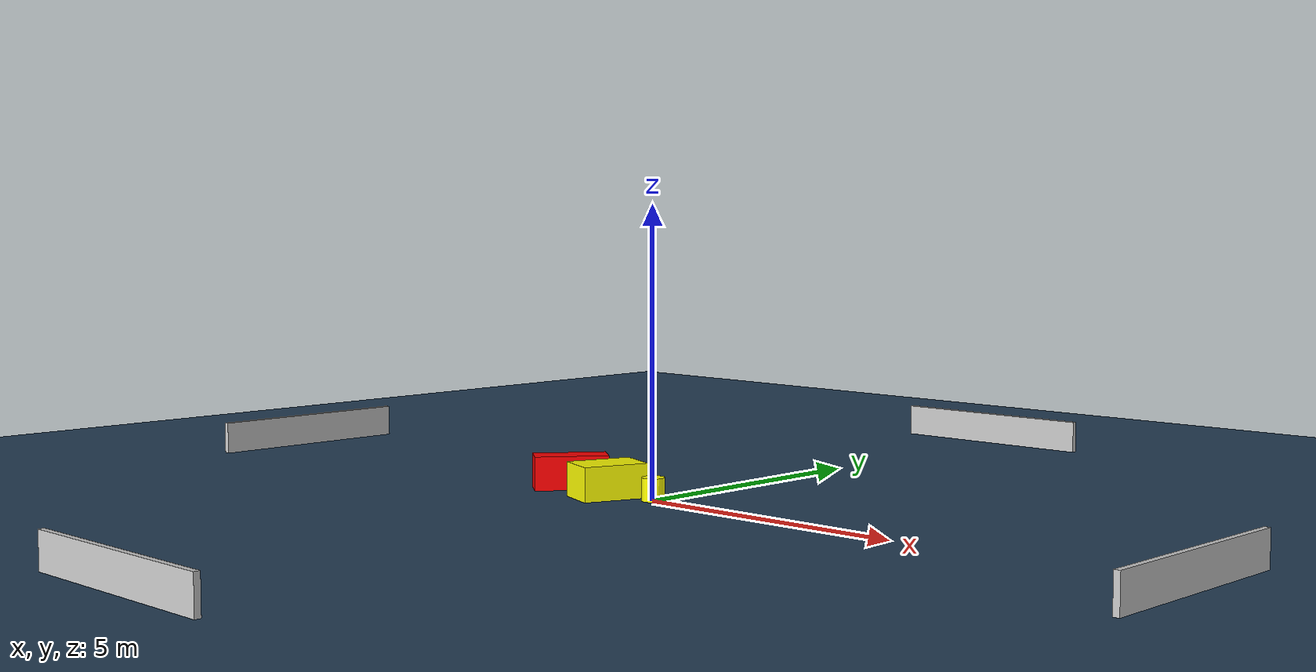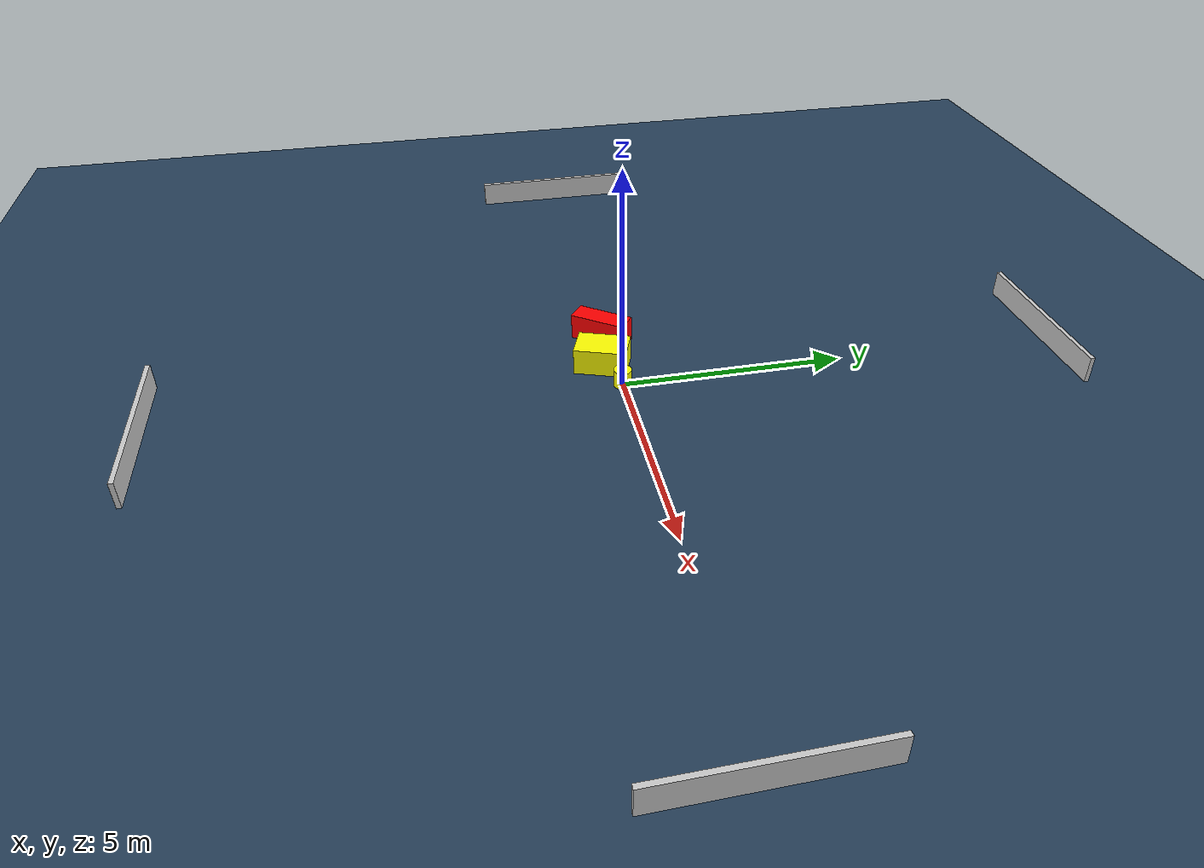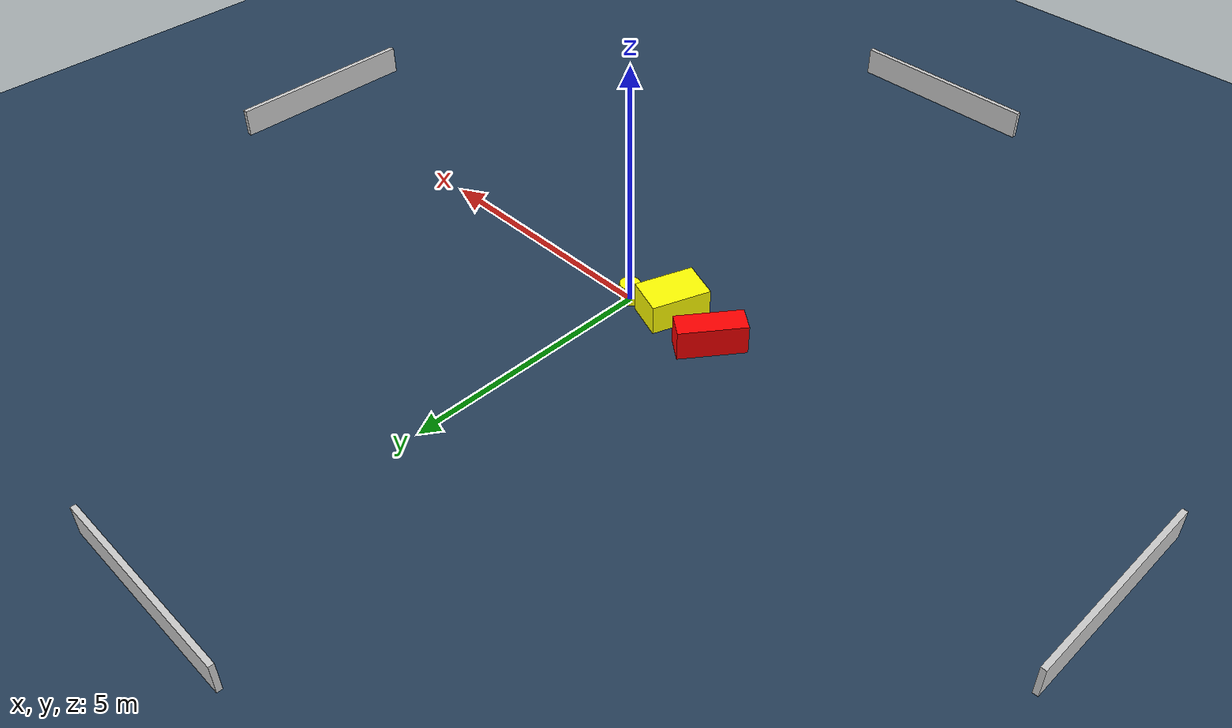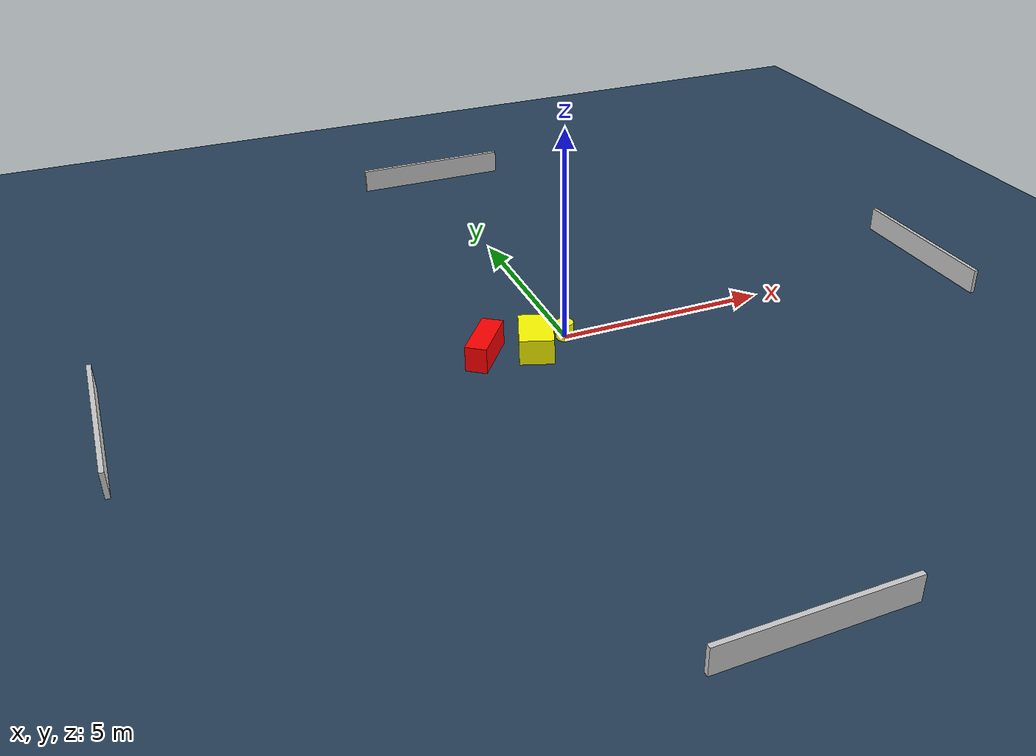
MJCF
<?xml version="1.0" ?>
<mujoco model="generated_environment">
  <option timestep="0.01" integrator="RK4" cone="elliptic"/>
  <default>
    <geom density="1"/>
  </default>
  <asset>
    <texture builtin="gradient" height="3072" name="skybox" rgb1="0.3 0.5 0.7" rgb2="0 0 0" type="skybox" width="512"/>
    <texture builtin="checker" height="300" name="groundplane" rgb1="0.2 0.3 0.4" rgb2="0.1 0.2 0.3" type="2d" width="300"/>
    <material name="groundplane" reflectance="0.2" texrepeat="5 5" texture="groundplane"/>
  </asset>
  <worldbody>
    <light dir="0 0 -1" directional="true" pos="0 0 1.5"/>
    <geom condim="3" friction="0.5 0.005 0.001" material="groundplane" name="floor" pos="0 0 0" size="0 0 0.05" type="plane"/>
    <body name="walls">
      <geom name="wall_1" condim="4" pos="-10.0 0.0 0.3" rgba="0.800000011920929 0.800000011920929 0.800000011920929 1.0" size="0.05 2.0 0.3" type="box"/>
      <geom name="wall_2" condim="4" pos="10.0 0.0 0.3" rgba="0.800000011920929 0.800000011920929 0.800000011920929 1.0" size="0.05 2.0 0.3" type="box"/>
      <geom name="wall_3" condim="4" pos="0.0 -10.0 0.3" rgba="0.800000011920929 0.800000011920929 0.800000011920929 1.0" size="2.0 0.05 0.3" type="box"/>
      <geom name="wall_4" condim="4" pos="0.0 10.0 0.3" rgba="0.800000011920929 0.800000011920929 0.800000011920929 1.0" size="2.0 0.05 0.3" type="box"/>
    </body>
    <body name="robot">
      <joint name="joint_x" type="slide" pos="0 0 0" axis="1 0 0"/>
      <joint name="joint_y" type="slide" pos="0 0 0" axis="0 1 0"/>
      <geom name="robot" type="cylinder" pos="0.0 0.0 0.2" size="0.2 0.2 0.0" mass="5.0" friction="1.0 0.005 0.0001" condim="4" rgba="1.0 1.0 0.0 1.0"/>
    </body>
    <body name="obstacle_1_movable">
      <geom name="obstacle_1_movable" condim="4" pos="-0.8208623783453984 -0.2881962093971424 0.3" euler="0 0 69.9704393420192" friction="0.0 0.005 0.001" rgba="1.0 1.0 0.0 1.0" size="0.5847918234278632 0.38802837372072996 0.3" type="box" mass="0.1"/>
      <joint type="free"/>
    </body>
    <body name="obstacle_2_static">
      <geom name="obstacle_2_static" condim="4" pos="-1.9600840383113982 -0.0868686940001167 0.3" euler="0 0 323.2337764694836" friction="0.0 0.005 0.001" rgba="1.0 0.0 0.0 1.0" size="0.24780194702920116 0.6514574856019276 0.3" type="box"/>
    </body>
  </worldbody>
  <actuator>
    <motor name="actuator_x" joint="joint_x" gear="1" ctrlrange="-1 1"/>
    <motor name="actuator_y" joint="joint_y" gear="1" ctrlrange="-1 1"/>
  </actuator>
</mujoco>
